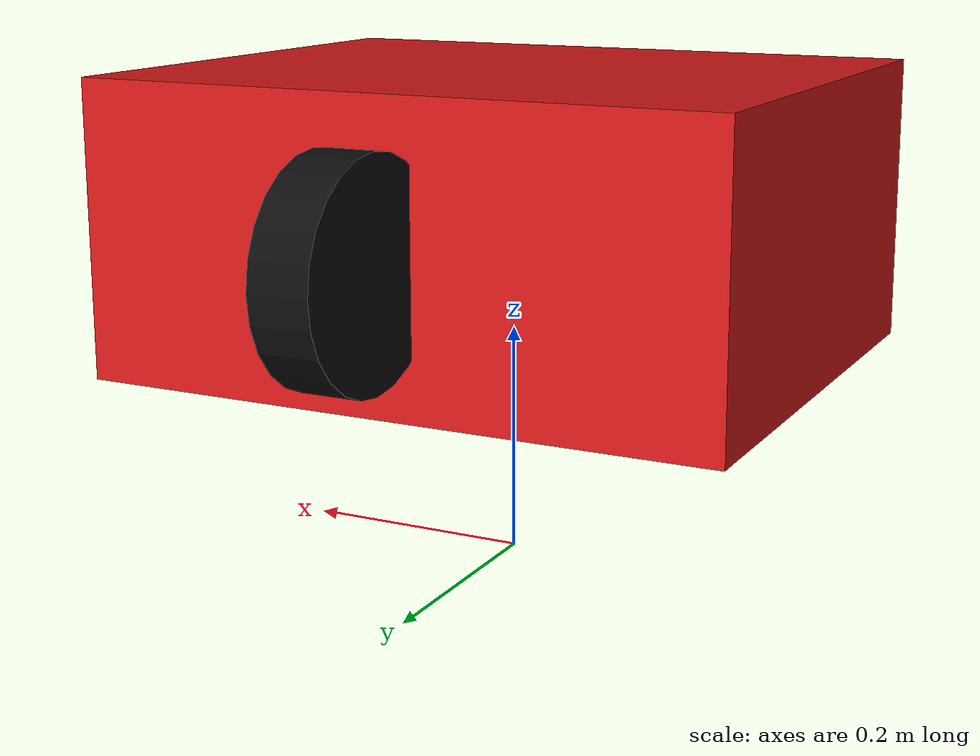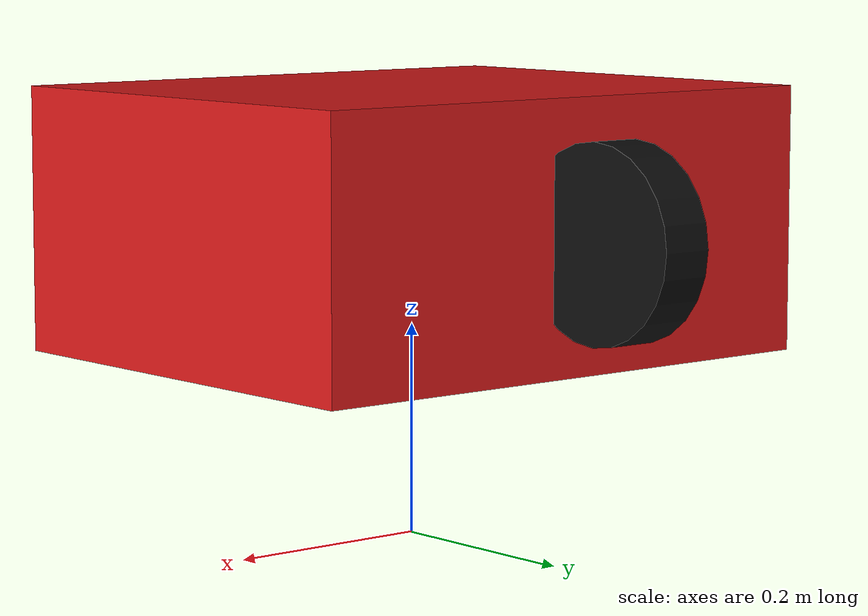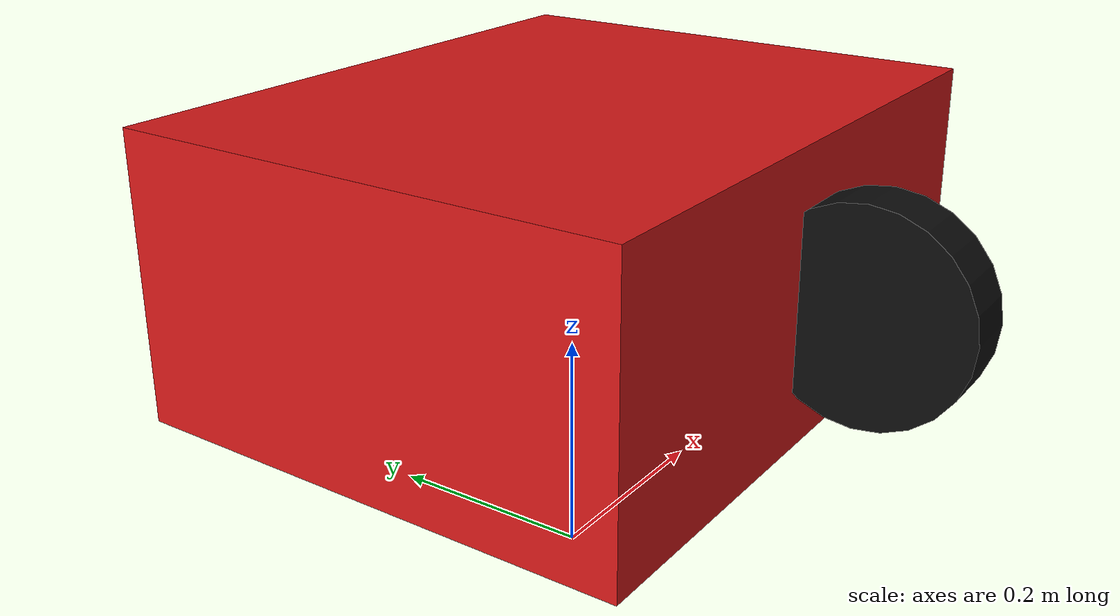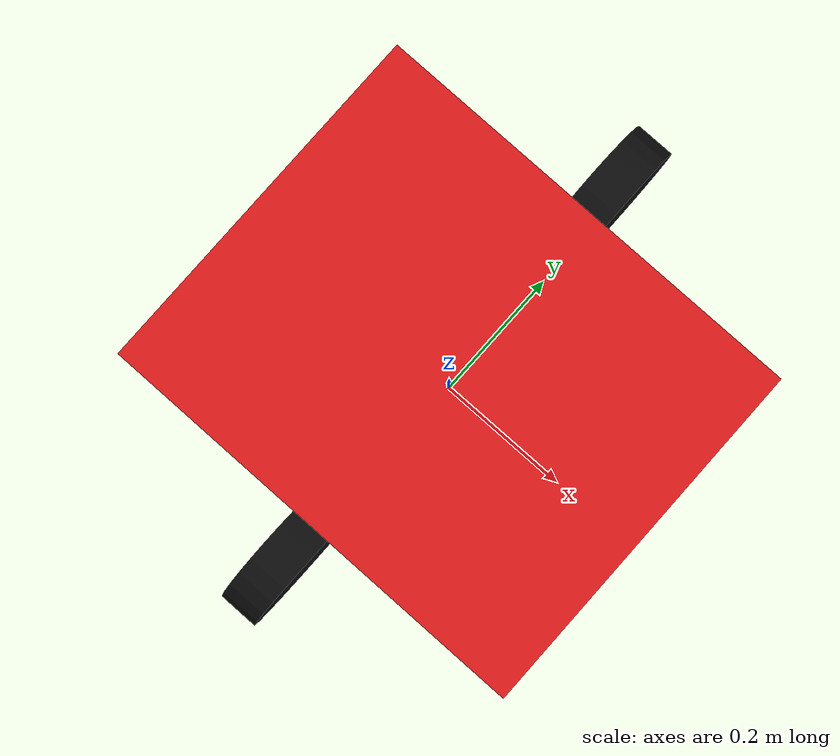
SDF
<?xml version="1.0" ?>
<sdf version="1.6">
  <model name="sample_robot">
    <static>false</static>
    <pose>0 0 0.3 0 0 0</pose>

    <!-- BASE -->
    <link name="base_link">
      <inertial>
        <mass>5.0</mass>
        <inertia>
          <ixx>0.1</ixx>
          <iyy>0.1</iyy>
          <izz>0.1</izz>
          <ixy>0</ixy>
          <ixz>0</ixz>
          <iyz>0</iyz>
        </inertia>
      </inertial>
      <collision name="base_collision">
        <geometry>
          <box>
            <size>0.55 0.45 0.25</size>
          </box>
        </geometry>
      </collision>
      <visual name="base_visual">
        <geometry>
          <box>
            <size>0.55 0.45 0.25</size>
          </box>
        </geometry>
        <material>
          <ambient>0.85 0.1 0.1 1</ambient>
        </material>
      </visual>
    </link>

    <!-- LEFT WHEEL -->
    <link name="left_wheel">
      <pose>0 0.275 0 0 1.57 0</pose>
      <inertial>
        <mass>1.0</mass>
        <inertia>
          <ixx>0.01</ixx>
          <iyy>0.01</iyy>
          <izz>0.01</izz>
          <ixy>0</ixy>
          <ixz>0</ixz>
          <iyz>0</iyz>
        </inertia>
      </inertial>
      <collision name="left_collision">
        <geometry>
          <cylinder>
            <radius>0.09</radius>
            <length>0.05</length>
          </cylinder>
        </geometry>
      </collision>
      <visual name="left_visual">
        <geometry>
          <cylinder>
            <radius>0.09</radius>
            <length>0.05</length>
          </cylinder>
        </geometry>
        <material>
          <ambient>0.05 0.05 0.05 1</ambient>
        </material>
      </visual>
    </link>

    <!-- RIGHT WHEEL -->
    <link name="right_wheel">
      <pose>0 -0.275 0 0 1.57 0</pose>
      <inertial>
        <mass>1.0</mass>
        <inertia>
          <ixx>0.01</ixx>
          <iyy>0.01</iyy>
          <izz>0.01</izz>
          <ixy>0</ixy>
          <ixz>0</ixz>
          <iyz>0</iyz>
        </inertia>
      </inertial>
      <collision name="right_collision">
        <geometry>
          <cylinder>
            <radius>0.09</radius>
            <length>0.05</length>
          </cylinder>
        </geometry>
      </collision>
      <visual name="right_visual">
        <geometry>
          <cylinder>
            <radius>0.09</radius>
            <length>0.05</length>
          </cylinder>
        </geometry>
        <material>
          <ambient>0.05 0.05 0.05 1</ambient>
        </material>
      </visual>
    </link>

    <!-- JOINTS -->
    <joint name="left_wheel_joint" type="revolute">
      <parent>base_link</parent>
      <child>left_wheel</child>
      <axis>
        <xyz>0 1 0</xyz>
        <limit>
          <lower>-1000</lower>
          <upper>1000</upper>
        </limit>
      </axis>
    </joint>

    <joint name="right_wheel_joint" type="revolute">
      <parent>base_link</parent>
      <child>right_wheel</child>
      <axis>
        <xyz>0 1 0</xyz>
        <limit>
          <lower>-1000</lower>
          <upper>1000</upper>
        </limit>
      </axis>
    </joint>

    <!-- DIFF DRIVE PLUGIN -->
    <plugin name="sample_diff_drive" filename="libgazebo_ros_diff_drive.so">
      <ros>
        <namespace>/sample</namespace>
      </ros>
      <left_joint>left_wheel_joint</left_joint>
      <right_joint>right_wheel_joint</right_joint>
      <wheel_separation>0.55</wheel_separation>
      <wheel_diameter>0.18</wheel_diameter>
      <command_topic>cmd_vel</command_topic>
      <odometry_topic>odom</odometry_topic>
    </plugin>

  </model>
</sdf>
